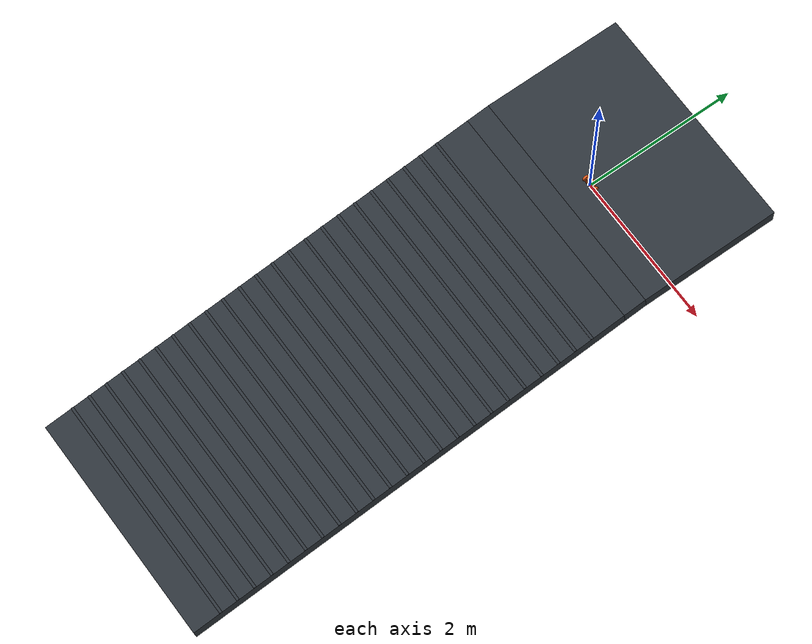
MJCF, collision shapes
<mujoco model="Stage4B rtrain_037_m08p0">
  <compiler angle="radian" meshdir="../../../../assets/upstream_local" />
  <option timestep="0.001" integrator="implicitfast" gravity="0 0 -9.81" />
  <statistic center="0 0 0.05" extent="0.28" />
  <default>
    <default class="visual">
      <geom contype="0" conaffinity="0" group="2" />
    </default>
    <default class="collision">
      <geom group="3" rgba="0.85 0.35 0.12 0.25" solref="0.005 1" solimp="0.9 0.95 0.001" />
    </default>
  </default>
  <asset>
    <texture name="ground_tex" type="2d" builtin="checker" rgb1="0.22 0.25 0.28" rgb2="0.12 0.14 0.16" width="256" height="256" />
    <material name="ground_mat" texture="ground_tex" texrepeat="4 4" reflectance="0.15" />
    <mesh name="main_frame_mesh" file="main_frame.stl" scale="0.001 0.001 0.001" />
    <mesh name="wheel_base_mesh" file="wheel_base.stl" scale="0.001 0.001 0.001" />
    <mesh name="cover_mesh" file="cover.stl" scale="0.001 0.001 0.001" />
    <mesh name="motor_left_mesh" file="motor_left.stl" scale="0.001 0.001 0.001" />
    <mesh name="motor_right_mesh" file="motor_right.stl" scale="0.001 0.001 0.001" />
    <mesh name="mc33926_mesh" file="mc33926.stl" scale="0.001 0.001 0.001" />
    <mesh name="wheel_mesh" file="wheel.stl" scale="0.001 0.001 0.001" />
    <mesh name="adapter_left_mesh" file="adapter_left.stl" scale="0.001 0.001 0.001" />
    <mesh name="adapter_right_mesh" file="adapter_right.stl" scale="0.001 0.001 0.001" />
  </asset>
  <worldbody>
    <light pos="0 -0.5 0.8" dir="0 0.6 -1" diffuse="0.8 0.8 0.8" />
    <geom name="terrain_flat" type="box" pos="0 0.575 -0.1" size="1.5 0.925 0.1" material="ground_mat" friction="0.17834754 0.005 0.0001" condim="3" />
    <geom name="terrain_transition" type="box" pos="0 -0.484622900215 -0.119902772018" euler="0.13962634016 0 0" size="1.5 0.15 0.1" material="ground_mat" friction="0.17834754 0.005 0.0001" condim="3" />
    <geom name="terrain_constant_grade" type="box" pos="0 -3.60396731675 -0.558298040042" euler="0.13962634016 0 0" size="1.5 3 0.1" material="ground_mat" friction="0.17834754 0.005 0.0001" condim="3" />
    <geom name="terrain_rough_00" type="box" pos="0 -1.09335458291 -0.0997297085246" euler="0.13962634016 0 0" size="1.5 0.0177952961752 0.00469581655943" material="ground_mat" friction="0.17834754 0.005 0.0001" condim="3" />
    <geom name="terrain_rough_01" type="box" pos="0 -1.32616904259 -0.132449647018" euler="0.13962634016 0 0" size="1.5 0.0177952961752 0.00469581655943" material="ground_mat" friction="0.17834754 0.005 0.0001" condim="3" />
    <geom name="terrain_rough_02" type="box" pos="0 -1.55898350226 -0.165169585512" euler="0.13962634016 0 0" size="1.5 0.0177952961752 0.00469581655943" material="ground_mat" friction="0.17834754 0.005 0.0001" condim="3" />
    <geom name="terrain_rough_03" type="box" pos="0 -1.79179796194 -0.197889524006" euler="0.13962634016 0 0" size="1.5 0.0177952961752 0.00469581655943" material="ground_mat" friction="0.17834754 0.005 0.0001" condim="3" />
    <geom name="terrain_rough_04" type="box" pos="0 -2.02461242162 -0.2306094625" euler="0.13962634016 0 0" size="1.5 0.0177952961752 0.00469581655943" material="ground_mat" friction="0.17834754 0.005 0.0001" condim="3" />
    <geom name="terrain_rough_05" type="box" pos="0 -2.25742688129 -0.263329400994" euler="0.13962634016 0 0" size="1.5 0.0177952961752 0.00469581655943" material="ground_mat" friction="0.17834754 0.005 0.0001" condim="3" />
    <geom name="terrain_rough_06" type="box" pos="0 -2.49024134097 -0.296049339488" euler="0.13962634016 0 0" size="1.5 0.0177952961752 0.00469581655943" material="ground_mat" friction="0.17834754 0.005 0.0001" condim="3" />
    <geom name="terrain_rough_07" type="box" pos="0 -2.72305580065 -0.328769277981" euler="0.13962634016 0 0" size="1.5 0.0177952961752 0.00469581655943" material="ground_mat" friction="0.17834754 0.005 0.0001" condim="3" />
    <geom name="terrain_rough_08" type="box" pos="0 -2.95587026033 -0.361489216475" euler="0.13962634016 0 0" size="1.5 0.0177952961752 0.00469581655943" material="ground_mat" friction="0.17834754 0.005 0.0001" condim="3" />
    <geom name="terrain_rough_09" type="box" pos="0 -3.18868472 -0.394209154969" euler="0.13962634016 0 0" size="1.5 0.0177952961752 0.00469581655943" material="ground_mat" friction="0.17834754 0.005 0.0001" condim="3" />
    <geom name="terrain_rough_10" type="box" pos="0 -3.42149917968 -0.426929093463" euler="0.13962634016 0 0" size="1.5 0.0177952961752 0.00469581655943" material="ground_mat" friction="0.17834754 0.005 0.0001" condim="3" />
    <geom name="terrain_rough_11" type="box" pos="0 -3.65431363936 -0.459649031957" euler="0.13962634016 0 0" size="1.5 0.0177952961752 0.00469581655943" material="ground_mat" friction="0.17834754 0.005 0.0001" condim="3" />
    <geom name="terrain_rough_12" type="box" pos="0 -3.88712809904 -0.492368970451" euler="0.13962634016 0 0" size="1.5 0.0177952961752 0.00469581655943" material="ground_mat" friction="0.17834754 0.005 0.0001" condim="3" />
    <geom name="terrain_rough_13" type="box" pos="0 -4.11994255871 -0.525088908944" euler="0.13962634016 0 0" size="1.5 0.0177952961752 0.00469581655943" material="ground_mat" friction="0.17834754 0.005 0.0001" condim="3" />
    <geom name="terrain_rough_14" type="box" pos="0 -4.35275701839 -0.557808847438" euler="0.13962634016 0 0" size="1.5 0.0177952961752 0.00469581655943" material="ground_mat" friction="0.17834754 0.005 0.0001" condim="3" />
    <geom name="terrain_rough_15" type="box" pos="0 -4.58557147807 -0.590528785932" euler="0.13962634016 0 0" size="1.5 0.0177952961752 0.00469581655943" material="ground_mat" friction="0.17834754 0.005 0.0001" condim="3" />
    <geom name="terrain_rough_16" type="box" pos="0 -4.81838593775 -0.623248724426" euler="0.13962634016 0 0" size="1.5 0.0177952961752 0.00469581655943" material="ground_mat" friction="0.17834754 0.005 0.0001" condim="3" />
    <geom name="terrain_rough_17" type="box" pos="0 -5.05120039742 -0.65596866292" euler="0.13962634016 0 0" size="1.5 0.0177952961752 0.00469581655943" material="ground_mat" friction="0.17834754 0.005 0.0001" condim="3" />
    <geom name="terrain_rough_18" type="box" pos="0 -5.2840148571 -0.688688601414" euler="0.13962634016 0 0" size="1.5 0.0177952961752 0.00469581655943" material="ground_mat" friction="0.17834754 0.005 0.0001" condim="3" />
    <geom name="terrain_rough_19" type="box" pos="0 -5.51682931678 -0.721408539908" euler="0.13962634016 0 0" size="1.5 0.0177952961752 0.00469581655943" material="ground_mat" friction="0.17834754 0.005 0.0001" condim="3" />
    <geom name="terrain_rough_20" type="box" pos="0 -5.74964377646 -0.754128478401" euler="0.13962634016 0 0" size="1.5 0.0177952961752 0.00469581655943" material="ground_mat" friction="0.17834754 0.005 0.0001" condim="3" />
    <geom name="terrain_rough_21" type="box" pos="0 -5.98245823613 -0.786848416895" euler="0.13962634016 0 0" size="1.5 0.0177952961752 0.00469581655943" material="ground_mat" friction="0.17834754 0.005 0.0001" condim="3" />
    <geom name="terrain_rough_22" type="box" pos="0 -6.21527269581 -0.819568355389" euler="0.13962634016 0 0" size="1.5 0.0177952961752 0.00469581655943" material="ground_mat" friction="0.17834754 0.005 0.0001" condim="3" />
    <body name="chassis" pos="0 0 0.043">
      <freejoint name="root" />
      <inertial pos="0.0001592717873 -0.001394466535 0.03368627387" mass="0.8173706489" fullinertia="0.0009508052638 0.001636345835 0.0009938057434 -1.163464906e-07 -4.840496598e-06 3.454944565e-05" />
      <geom name="main_frame_visual" class="visual" type="mesh" mesh="main_frame_mesh" rgba="0.12 0.42 0.72 1" />
      <geom name="wheel_base_visual" class="visual" type="mesh" mesh="wheel_base_mesh" rgba="0.95 0.50 0.10 1" />
      <geom name="cover_visual" class="visual" type="mesh" mesh="cover_mesh" rgba="0.18 0.72 0.32 0.72" />
      <geom name="motor_left_visual" class="visual" type="mesh" mesh="motor_left_mesh" rgba="0.45 0.47 0.50 1" />
      <geom name="motor_right_visual" class="visual" type="mesh" mesh="motor_right_mesh" rgba="0.45 0.47 0.50 1" />
      <geom name="mc33926_visual" class="visual" type="mesh" mesh="mc33926_mesh" rgba="0.08 0.36 0.18 1" />
      <geom name="battery_1_visual" class="visual" type="box" pos="0 -0.012 0.038" size="0.035 0.007 0.025" rgba="0.15 0.25 0.75 1" />
      <geom name="battery_2_visual" class="visual" type="box" pos="0 0.012 0.038" size="0.035 0.007 0.025" rgba="0.15 0.25 0.75 1" />
      <geom name="electronics_lump_visual" class="visual" type="box" pos="0 -0.024 0.067" size="0.035 0.006 0.0425" rgba="0.10 0.42 0.20 0.65" />
      <geom name="wheel_base_collision" class="collision" type="box" pos="0 0.0005 0.0042" size="0.074 0.0201 0.0198" />
      <geom name="lower_chassis_collision" class="collision" type="box" pos="0.001 -0.0015 0.038" size="0.0595 0.0325 0.038" />
      <geom name="upper_chassis_collision" class="collision" type="capsule" fromto="-0.024 -0.0015 0.096 0.026 -0.0015 0.096" size="0.033" />
      <site name="imu_site" type="box" pos="0 0 0.020" quat="1 0 0 0" size="0.004 0.003 0.001" rgba="1 0.15 0.05 1" />
      <body name="left_wheel" pos="-0.0885 0 0">
        <joint name="left_wheel_hinge" type="hinge" axis="1 0 0" damping="0.002" frictionloss="0.002" />
        <inertial pos="0.001407549168 -2.310217342e-08 4.024972882e-05" mass="0.1051" fullinertia="8.559060347e-05 4.760138372e-05 4.763051958e-05 2.677568832e-11 -3.525425309e-08 -1.463149106e-11" />
        <geom name="left_wheel_visual" class="visual" type="mesh" mesh="wheel_mesh" rgba="0.04 0.05 0.06 1" />
        <geom name="left_adapter_visual" class="visual" type="mesh" mesh="adapter_left_mesh" rgba="0.12 0.48 0.82 1" />
        <geom name="left_wheel_collision" class="collision" type="cylinder" size="0.042 0.012" quat="0.7071067812 0 0.7071067812 0" friction="0.17834754 0.005 0.0001" />
      </body>
      <body name="right_wheel" pos="0.0885 0 0">
        <joint name="right_wheel_hinge" type="hinge" axis="1 0 0" damping="0.002" frictionloss="0.002" />
        <inertial pos="-0.001407437868 -2.310217342e-08 -4.019113045e-05" mass="0.1051" fullinertia="8.559060397e-05 4.760141714e-05 4.763055251e-05 -2.601653908e-11 -3.526339188e-08 1.57007511e-11" />
        <geom name="right_wheel_visual" class="visual" type="mesh" mesh="wheel_mesh" rgba="0.04 0.05 0.06 1" />
        <geom name="right_adapter_visual" class="visual" type="mesh" mesh="adapter_right_mesh" rgba="0.12 0.48 0.82 1" />
        <geom name="right_wheel_collision" class="collision" type="cylinder" size="0.042 0.012" quat="0.7071067812 0 0.7071067812 0" friction="0.17834754 0.005 0.0001" />
      </body>
    </body>
  </worldbody>
  <actuator>
    <motor name="left_wheel_torque" joint="left_wheel_hinge" gear="1" ctrllimited="true" ctrlrange="-0.63 0.63" forcelimited="true" forcerange="-0.63 0.63" />
    <motor name="right_wheel_torque" joint="right_wheel_hinge" gear="1" ctrllimited="true" ctrlrange="-0.63 0.63" forcelimited="true" forcerange="-0.63 0.63" />
  </actuator>
  <sensor>
    <accelerometer name="imu_accelerometer" site="imu_site" />
    <gyro name="imu_gyro" site="imu_site" />
    <jointpos name="left_wheel_angle" joint="left_wheel_hinge" />
    <jointpos name="right_wheel_angle" joint="right_wheel_hinge" />
  </sensor>
  <keyframe>
    <key name="upright" qpos="0 0 0.043 1 0 0 0 0 0" />
  </keyframe>
</mujoco>
